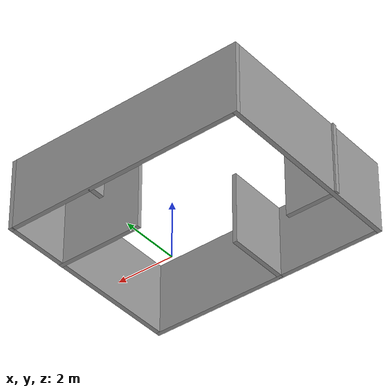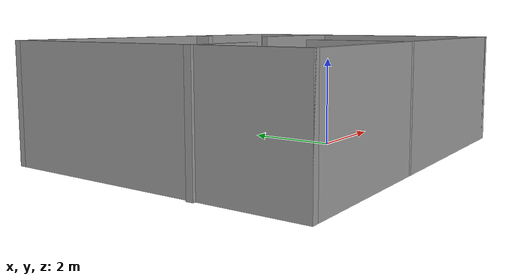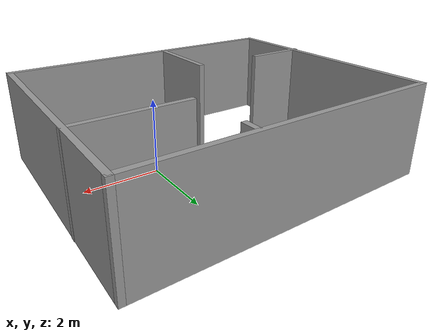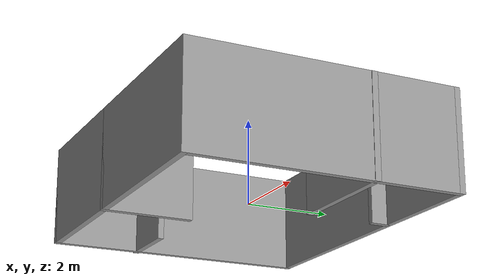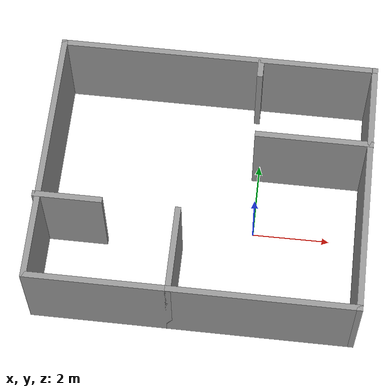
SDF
<?xml version='1.0'?>
<sdf version='1.7'>
  <model name='custom'>
    <pose>-1.33588 0.54 0 0 -0 0</pose>
    <link name='Wall_1'>
      <collision name='Wall_1_Collision'>
        <geometry>
          <box>
            <size>4.75 0.15 2.5</size>
          </box>
        </geometry>
        <pose>0 0 1.25 0 -0 0</pose>
      </collision>
      <visual name='Wall_1_Visual'>
        <pose>0 0 1.25 0 -0 0</pose>
        <geometry>
          <box>
            <size>4.75 0.15 2.5</size>
          </box>
        </geometry>
        <material>
          <script>
            <uri>file://media/materials/scripts/gazebo.material</uri>
            <name>Gazebo/Grey</name>
          </script>
          <ambient>1 1 1 1</ambient>
        </material>
        <meta>
          <layer>0</layer>
        </meta>
      </visual>
      <pose>1.77588 -3.3 0 0 -0 0</pose>
    </link>
    <link name='Wall_10'>
      <collision name='Wall_10_Collision'>
        <geometry>
          <box>
            <size>0.5 0.15 2.5</size>
          </box>
        </geometry>
        <pose>0 0 1.25 0 -0 0</pose>
      </collision>
      <visual name='Wall_10_Visual'>
        <pose>0 0 1.25 0 -0 0</pose>
        <geometry>
          <box>
            <size>0.5 0.15 2.5</size>
          </box>
        </geometry>
        <material>
          <script>
            <uri>file://media/materials/scripts/gazebo.material</uri>
            <name>Gazebo/Grey</name>
          </script>
          <ambient>1 1 1 1</ambient>
        </material>
        <meta>
          <layer>0</layer>
        </meta>
      </visual>
      <pose>1.13276 3.05876 0 0 -0 -1.5708</pose>
    </link>
    <link name='Wall_13'>
      <collision name='Wall_13_Collision'>
        <geometry>
          <box>
            <size>3 0.15 2.5</size>
          </box>
        </geometry>
        <pose>0 0 1.25 0 -0 0</pose>
      </collision>
      <visual name='Wall_13_Visual'>
        <pose>0 0 1.25 0 -0 0</pose>
        <geometry>
          <box>
            <size>3 0.15 2.5</size>
          </box>
        </geometry>
        <material>
          <script>
            <uri>file://media/materials/scripts/gazebo.material</uri>
            <name>Gazebo/Grey</name>
          </script>
          <ambient>1 1 1 1</ambient>
        </material>
        <meta>
          <layer>0</layer>
        </meta>
      </visual>
      <pose>2.66101 1.13007 0 0 -0 3.14159</pose>
    </link>
    <link name='Wall_2'>
      <collision name='Wall_2_Collision'>
        <geometry>
          <box>
            <size>6.75 0.15 2.5</size>
          </box>
        </geometry>
        <pose>0 0 1.25 0 -0 0</pose>
      </collision>
      <visual name='Wall_2_Visual'>
        <pose>0 0 1.25 0 -0 0</pose>
        <geometry>
          <box>
            <size>6.75 0.15 2.5</size>
          </box>
        </geometry>
        <material>
          <script>
            <uri>file://media/materials/scripts/gazebo.material</uri>
            <name>Gazebo/Grey</name>
          </script>
          <ambient>1 1 1 1</ambient>
        </material>
        <meta>
          <layer>0</layer>
        </meta>
      </visual>
      <pose>4.07588 0 0 0 -0 1.5708</pose>
    </link>
    <link name='Wall_3'>
      <collision name='Wall_3_Collision'>
        <geometry>
          <box>
            <size>8.25 0.15 2.5</size>
          </box>
        </geometry>
        <pose>0 0 1.25 0 -0 0</pose>
      </collision>
      <visual name='Wall_3_Visual'>
        <pose>0 0 1.25 0 -0 0</pose>
        <geometry>
          <box>
            <size>8.25 0.15 2.5</size>
          </box>
        </geometry>
        <material>
          <script>
            <uri>file://media/materials/scripts/gazebo.material</uri>
            <name>Gazebo/Grey</name>
          </script>
          <ambient>1 1 1 1</ambient>
        </material>
        <meta>
          <layer>0</layer>
        </meta>
      </visual>
      <pose>0.025877 3.3 0 0 -0 3.14159</pose>
    </link>
    <link name='Wall_4'>
      <collision name='Wall_4_Collision'>
        <geometry>
          <box>
            <size>6.75 0.15 2.5</size>
          </box>
        </geometry>
        <pose>0 0 1.25 0 -0 0</pose>
      </collision>
      <visual name='Wall_4_Visual'>
        <pose>0 0 1.25 0 -0 0</pose>
        <geometry>
          <box>
            <size>6.75 0.15 2.5</size>
          </box>
        </geometry>
        <material>
          <script>
            <uri>file://media/materials/scripts/gazebo.material</uri>
            <name>Gazebo/Grey</name>
          </script>
          <ambient>1 1 1 1</ambient>
        </material>
        <meta>
          <layer>0</layer>
        </meta>
      </visual>
      <pose>-4.02412 0 0 0 -0 -1.5708</pose>
    </link>
    <link name='Wall_5'>
      <collision name='Wall_5_Collision'>
        <geometry>
          <box>
            <size>3.65 0.15 2.5</size>
          </box>
        </geometry>
        <pose>0 0 1.25 0 -0 0</pose>
      </collision>
      <visual name='Wall_5_Visual'>
        <pose>0 0 1.25 0 -0 0</pose>
        <geometry>
          <box>
            <size>3.65 0.15 2.5</size>
          </box>
        </geometry>
        <material>
          <script>
            <uri>file://media/materials/scripts/gazebo.material</uri>
            <name>Gazebo/Grey</name>
          </script>
          <ambient>1 1 1 1</ambient>
        </material>
        <meta>
          <layer>0</layer>
        </meta>
      </visual>
      <pose>-2.27412 -3.3 0 0 -0 0</pose>
    </link>
    <link name='Wall_6'>
      <collision name='Wall_6_Collision'>
        <geometry>
          <box>
            <size>2.25 0.15 2.5</size>
          </box>
        </geometry>
        <pose>0 0 1.25 0 -0 0</pose>
      </collision>
      <visual name='Wall_6_Visual'>
        <pose>0 0 1.25 0 -0 0</pose>
        <geometry>
          <box>
            <size>2.25 0.15 2.5</size>
          </box>
        </geometry>
        <material>
          <script>
            <uri>file://media/materials/scripts/gazebo.material</uri>
            <name>Gazebo/Grey</name>
          </script>
          <ambient>1 1 1 1</ambient>
        </material>
        <meta>
          <layer>0</layer>
        </meta>
      </visual>
      <pose>-0.524123 -2.25 0 0 -0 1.5708</pose>
    </link>
    <link name='Wall_8'>
      <collision name='Wall_8_Collision'>
        <geometry>
          <box>
            <size>1.75 0.15 2.5</size>
          </box>
        </geometry>
        <pose>0 0 1.25 0 -0 0</pose>
      </collision>
      <visual name='Wall_8_Visual'>
        <pose>0 0 1.25 0 -0 0</pose>
        <geometry>
          <box>
            <size>1.75 0.15 2.5</size>
          </box>
        </geometry>
        <material>
          <script>
            <uri>file://media/materials/scripts/gazebo.material</uri>
            <name>Gazebo/Grey</name>
          </script>
          <ambient>1 1 1 1</ambient>
        </material>
        <meta>
          <layer>0</layer>
        </meta>
      </visual>
      <pose>-3.28601 -1.13544 0 0 -0 0</pose>
    </link>
    <static>1</static>
  </model>
</sdf>
